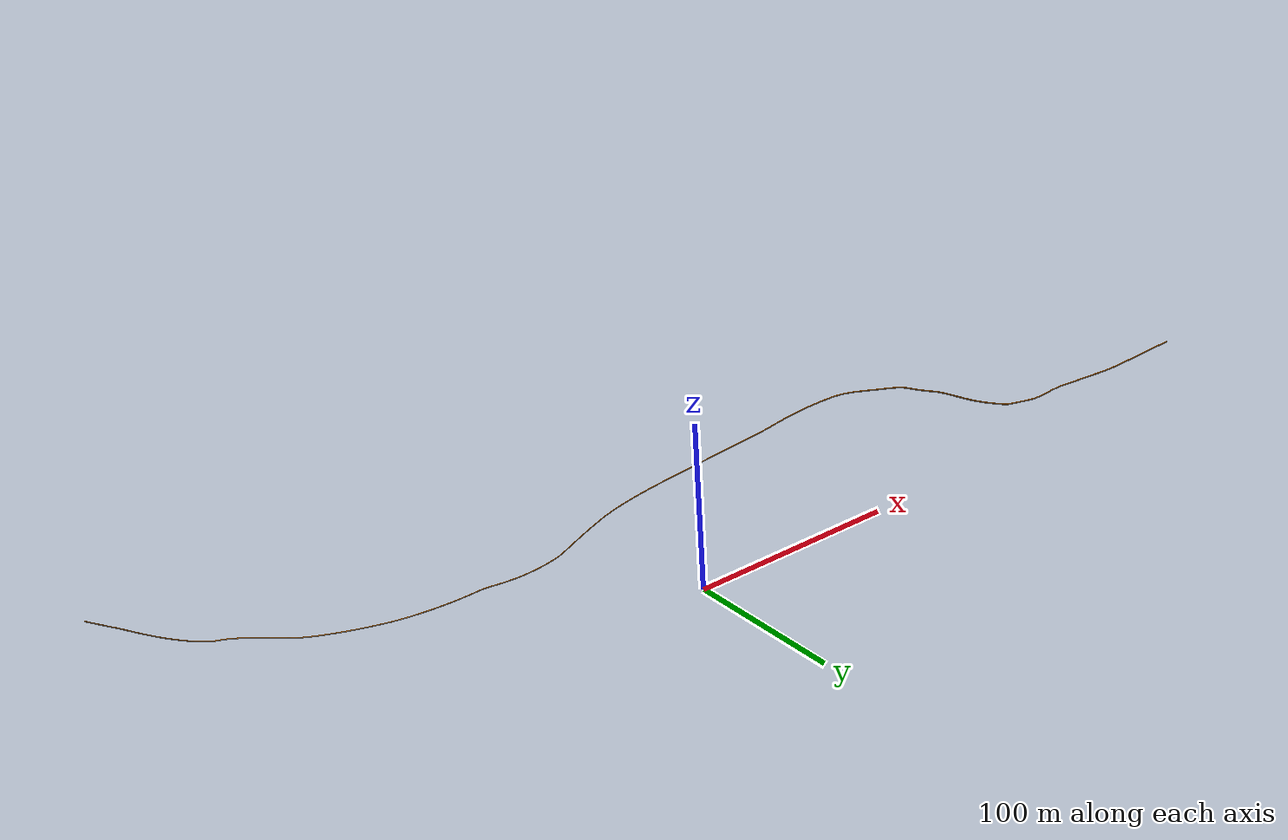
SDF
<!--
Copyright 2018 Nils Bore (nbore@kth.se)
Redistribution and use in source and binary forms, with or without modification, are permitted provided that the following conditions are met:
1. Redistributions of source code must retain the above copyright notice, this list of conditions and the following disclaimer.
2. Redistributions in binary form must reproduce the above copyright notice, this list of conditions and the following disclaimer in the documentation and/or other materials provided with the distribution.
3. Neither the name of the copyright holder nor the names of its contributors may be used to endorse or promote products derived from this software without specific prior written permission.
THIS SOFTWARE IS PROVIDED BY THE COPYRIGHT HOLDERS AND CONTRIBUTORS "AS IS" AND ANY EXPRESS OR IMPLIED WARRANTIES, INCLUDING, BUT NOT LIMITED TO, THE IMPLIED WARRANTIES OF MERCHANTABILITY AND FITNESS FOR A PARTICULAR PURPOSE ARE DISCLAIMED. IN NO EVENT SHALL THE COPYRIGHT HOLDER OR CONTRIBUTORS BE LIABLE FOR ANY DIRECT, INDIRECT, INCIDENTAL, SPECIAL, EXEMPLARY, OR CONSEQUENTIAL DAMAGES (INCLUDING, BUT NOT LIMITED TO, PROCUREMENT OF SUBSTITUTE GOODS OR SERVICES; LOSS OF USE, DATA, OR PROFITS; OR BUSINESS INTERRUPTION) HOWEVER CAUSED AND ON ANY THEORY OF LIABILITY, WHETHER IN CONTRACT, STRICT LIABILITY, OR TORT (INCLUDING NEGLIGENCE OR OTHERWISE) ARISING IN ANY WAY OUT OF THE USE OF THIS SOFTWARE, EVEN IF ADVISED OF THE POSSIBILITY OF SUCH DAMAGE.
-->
<?xml version="1.0" ?>
<sdf version="1.5">
  <model name="pipeline">
    <static>true</static>
    <link name="link">
      <collision name="pipeline_collision">
        <pose>0 0 0 0 0 0</pose>
        <geometry>
          <mesh><uri>model://pipeline/meshes/pipeline_collision.stl</uri></mesh>
        </geometry>
        <laser_retro>200</laser_retro>
      </collision>

      <visual name="pipeline_visual">
        <cast_shadows>true</cast_shadows>
        <pose>0 0 0 0 0 0</pose>
        <geometry>
          <mesh><uri>model://pipeline/meshes/pipeline.dae</uri></mesh>
        </geometry>
		<material>
          <script>
            <uri>file://media/materials/scripts/gazebo.material</uri>
            <name>Gazebo/Orange</name>
           </script>
        </material>
		<laser_retro>200</laser_retro>
      </visual>
    </link>
  </model>
</sdf>
